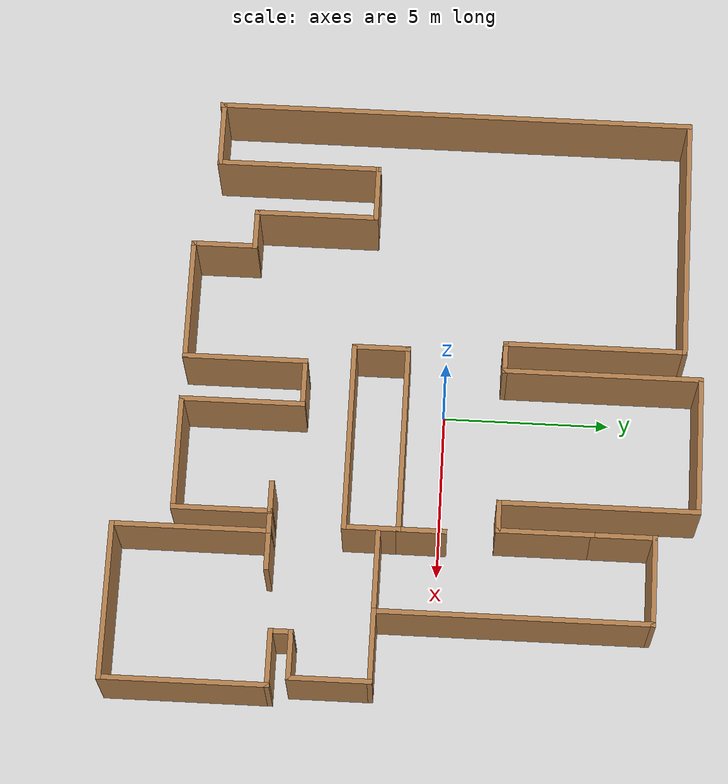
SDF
<?xml version='1.0'?>
<sdf version='1.6'>
  <model name='map_128'>
    <pose frame=''>0.047222 -0.987392 0 0 -0 0</pose>
    <link name='Wall_10'>
      <collision name='Wall_10_Collision'>
        <geometry>
          <box>
            <size>5 0.15 2.5</size>
          </box>
        </geometry>
        <pose frame=''>0 0 1.25 0 -0 0</pose>
      </collision>
      <visual name='Wall_10_Visual'>
        <pose frame=''>0 0 1.25 0 -0 0</pose>
        <geometry>
          <box>
            <size>5 0.15 2.5</size>
          </box>
        </geometry>
        <material>
          <script>
            <uri>file://media/materials/scripts/gazebo.material</uri>
            <name>Gazebo/Wood</name>
          </script>
          <ambient>1 1 1 1</ambient>
        </material>
        <meta>
          <layer>0</layer>
        </meta>
      </visual>
      <pose frame=''>-7.15 -3.8 0 0 -0 1.5708</pose>
    </link>
    <link name='Wall_11'>
      <collision name='Wall_11_Collision'>
        <geometry>
          <box>
            <size>1.75 0.15 2.5</size>
          </box>
        </geometry>
        <pose frame=''>0 0 1.25 0 -0 0</pose>
      </collision>
      <visual name='Wall_11_Visual'>
        <pose frame=''>0 0 1.25 0 -0 0</pose>
        <geometry>
          <box>
            <size>1.75 0.15 2.5</size>
          </box>
        </geometry>
        <material>
          <script>
            <uri>file://media/materials/scripts/gazebo.material</uri>
            <name>Gazebo/Wood</name>
          </script>
          <ambient>1 1 1 1</ambient>
        </material>
        <meta>
          <layer>0</layer>
        </meta>
      </visual>
      <pose frame=''>-6.35 -1.375 0 0 -0 0</pose>
    </link>
    <link name='Wall_12'>
      <collision name='Wall_12_Collision'>
        <geometry>
          <box>
            <size>3.75 0.15 2.5</size>
          </box>
        </geometry>
        <pose frame=''>0 0 1.25 0 -0 0</pose>
      </collision>
      <visual name='Wall_12_Visual'>
        <pose frame=''>0 0 1.25 0 -0 0</pose>
        <geometry>
          <box>
            <size>3.75 0.15 2.5</size>
          </box>
        </geometry>
        <material>
          <script>
            <uri>file://media/materials/scripts/gazebo.material</uri>
            <name>Gazebo/Wood</name>
          </script>
          <ambient>1 1 1 1</ambient>
        </material>
        <meta>
          <layer>0</layer>
        </meta>
      </visual>
      <pose frame=''>-5.55 -3.175 0 0 -0 -1.5708</pose>
    </link>
    <link name='Wall_13'>
      <collision name='Wall_13_Collision'>
        <geometry>
          <box>
            <size>1.25 0.15 2.5</size>
          </box>
        </geometry>
        <pose frame=''>0 0 1.25 0 -0 0</pose>
      </collision>
      <visual name='Wall_13_Visual'>
        <pose frame=''>0 0 1.25 0 -0 0</pose>
        <geometry>
          <box>
            <size>1.25 0.15 2.5</size>
          </box>
        </geometry>
        <material>
          <script>
            <uri>file://media/materials/scripts/gazebo.material</uri>
            <name>Gazebo/Wood</name>
          </script>
          <ambient>1 1 1 1</ambient>
        </material>
        <meta>
          <layer>0</layer>
        </meta>
      </visual>
      <pose frame=''>-5 -4.975 0 0 -0 0</pose>
    </link>
    <link name='Wall_14'>
      <collision name='Wall_14_Collision'>
        <geometry>
          <box>
            <size>2 0.15 2.5</size>
          </box>
        </geometry>
        <pose frame=''>0 0 1.25 0 -0 0</pose>
      </collision>
      <visual name='Wall_14_Visual'>
        <pose frame=''>0 0 1.25 0 -0 0</pose>
        <geometry>
          <box>
            <size>2 0.15 2.5</size>
          </box>
        </geometry>
        <material>
          <script>
            <uri>file://media/materials/scripts/gazebo.material</uri>
            <name>Gazebo/Wood</name>
          </script>
          <ambient>1 1 1 1</ambient>
        </material>
        <meta>
          <layer>0</layer>
        </meta>
      </visual>
      <pose frame=''>-4.45 -5.9 0 0 -0 -1.5708</pose>
    </link>
    <link name='Wall_15'>
      <collision name='Wall_15_Collision'>
        <geometry>
          <box>
            <size>3.75 0.15 2.5</size>
          </box>
        </geometry>
        <pose frame=''>0 0 1.25 0 -0 0</pose>
      </collision>
      <visual name='Wall_15_Visual'>
        <pose frame=''>0 0 1.25 0 -0 0</pose>
        <geometry>
          <box>
            <size>3.75 0.15 2.5</size>
          </box>
        </geometry>
        <material>
          <script>
            <uri>file://media/materials/scripts/gazebo.material</uri>
            <name>Gazebo/Wood</name>
          </script>
          <ambient>1 1 1 1</ambient>
        </material>
        <meta>
          <layer>0</layer>
        </meta>
      </visual>
      <pose frame=''>-2.65 -6.825 0 0 -0 0</pose>
    </link>
    <link name='Wall_16'>
      <collision name='Wall_16_Collision'>
        <geometry>
          <box>
            <size>3.75 0.15 2.5</size>
          </box>
        </geometry>
        <pose frame=''>0 0 1.25 0 -0 0</pose>
      </collision>
      <visual name='Wall_16_Visual'>
        <pose frame=''>0 0 1.25 0 -0 0</pose>
        <geometry>
          <box>
            <size>3.75 0.15 2.5</size>
          </box>
        </geometry>
        <material>
          <script>
            <uri>file://media/materials/scripts/gazebo.material</uri>
            <name>Gazebo/Wood</name>
          </script>
          <ambient>1 1 1 1</ambient>
        </material>
        <meta>
          <layer>0</layer>
        </meta>
      </visual>
      <pose frame=''>-0.85 -5.025 0 0 -0 1.5708</pose>
    </link>
    <link name='Wall_17'>
      <collision name='Wall_17_Collision'>
        <geometry>
          <box>
            <size>1.5 0.15 2.5</size>
          </box>
        </geometry>
        <pose frame=''>0 0 1.25 0 -0 0</pose>
      </collision>
      <visual name='Wall_17_Visual'>
        <pose frame=''>0 0 1.25 0 -0 0</pose>
        <geometry>
          <box>
            <size>1.5 0.15 2.5</size>
          </box>
        </geometry>
        <material>
          <script>
            <uri>file://media/materials/scripts/gazebo.material</uri>
            <name>Gazebo/Wood</name>
          </script>
          <ambient>1 1 1 1</ambient>
        </material>
        <meta>
          <layer>0</layer>
        </meta>
      </visual>
      <pose frame=''>-0.175 -3.225 0 0 -0 0</pose>
    </link>
    <link name='Wall_18'>
      <collision name='Wall_18_Collision'>
        <geometry>
          <box>
            <size>3.75 0.15 2.5</size>
          </box>
        </geometry>
        <pose frame=''>0 0 1.25 0 -0 0</pose>
      </collision>
      <visual name='Wall_18_Visual'>
        <pose frame=''>0 0 1.25 0 -0 0</pose>
        <geometry>
          <box>
            <size>3.75 0.15 2.5</size>
          </box>
        </geometry>
        <material>
          <script>
            <uri>file://media/materials/scripts/gazebo.material</uri>
            <name>Gazebo/Wood</name>
          </script>
          <ambient>1 1 1 1</ambient>
        </material>
        <meta>
          <layer>0</layer>
        </meta>
      </visual>
      <pose frame=''>0.5 -5.025 0 0 -0 -1.5708</pose>
    </link>
    <link name='Wall_19'>
      <collision name='Wall_19_Collision'>
        <geometry>
          <box>
            <size>3.5 0.15 2.5</size>
          </box>
        </geometry>
        <pose frame=''>0 0 1.25 0 -0 0</pose>
      </collision>
      <visual name='Wall_19_Visual'>
        <pose frame=''>0 0 1.25 0 -0 0</pose>
        <geometry>
          <box>
            <size>3.5 0.15 2.5</size>
          </box>
        </geometry>
        <material>
          <script>
            <uri>file://media/materials/scripts/gazebo.material</uri>
            <name>Gazebo/Wood</name>
          </script>
          <ambient>1 1 1 1</ambient>
        </material>
        <meta>
          <layer>0</layer>
        </meta>
      </visual>
      <pose frame=''>2.175 -6.825 0 0 -0 0</pose>
    </link>
    <link name='Wall_20'>
      <collision name='Wall_20_Collision'>
        <geometry>
          <box>
            <size>3 0.15 2.5</size>
          </box>
        </geometry>
        <pose frame=''>0 0 1.25 0 -0 0</pose>
      </collision>
      <visual name='Wall_20_Visual'>
        <pose frame=''>0 0 1.25 0 -0 0</pose>
        <geometry>
          <box>
            <size>3 0.15 2.5</size>
          </box>
        </geometry>
        <material>
          <script>
            <uri>file://media/materials/scripts/gazebo.material</uri>
            <name>Gazebo/Wood</name>
          </script>
          <ambient>1 1 1 1</ambient>
        </material>
        <meta>
          <layer>0</layer>
        </meta>
      </visual>
      <pose frame=''>3.85 -5.4 0 0 -0 1.5708</pose>
    </link>
    <link name='Wall_21'>
      <collision name='Wall_21_Collision'>
        <geometry>
          <box>
            <size>0.75 0.15 2.5</size>
          </box>
        </geometry>
        <pose frame=''>0 0 1.25 0 -0 0</pose>
      </collision>
      <visual name='Wall_21_Visual'>
        <pose frame=''>0 0 1.25 0 -0 0</pose>
        <geometry>
          <box>
            <size>0.75 0.15 2.5</size>
          </box>
        </geometry>
        <material>
          <script>
            <uri>file://media/materials/scripts/gazebo.material</uri>
            <name>Gazebo/Wood</name>
          </script>
          <ambient>1 1 1 1</ambient>
        </material>
        <meta>
          <layer>0</layer>
        </meta>
      </visual>
      <pose frame=''>4.15 -3.975 0 0 -0 0</pose>
    </link>
    <link name='Wall_22'>
      <collision name='Wall_22_Collision'>
        <geometry>
          <box>
            <size>4.75 0.15 2.5</size>
          </box>
        </geometry>
        <pose frame=''>0 0 1.25 0 -0 0</pose>
      </collision>
      <visual name='Wall_22_Visual'>
        <pose frame=''>0 0 1.25 0 -0 0</pose>
        <geometry>
          <box>
            <size>4.75 0.15 2.5</size>
          </box>
        </geometry>
        <material>
          <script>
            <uri>file://media/materials/scripts/gazebo.material</uri>
            <name>Gazebo/Wood</name>
          </script>
          <ambient>1 1 1 1</ambient>
        </material>
        <meta>
          <layer>0</layer>
        </meta>
      </visual>
      <pose frame=''>4.45 -6.275 0 0 -0 -1.5708</pose>
    </link>
    <link name='Wall_23'>
      <collision name='Wall_23_Collision'>
        <geometry>
          <box>
            <size>4.75 0.15 2.5</size>
          </box>
        </geometry>
        <pose frame=''>0 0 1.25 0 -0 0</pose>
      </collision>
      <visual name='Wall_23_Visual'>
        <pose frame=''>0 0 1.25 0 -0 0</pose>
        <geometry>
          <box>
            <size>4.75 0.15 2.5</size>
          </box>
        </geometry>
        <material>
          <script>
            <uri>file://media/materials/scripts/gazebo.material</uri>
            <name>Gazebo/Wood</name>
          </script>
          <ambient>1 1 1 1</ambient>
        </material>
        <meta>
          <layer>0</layer>
        </meta>
      </visual>
      <pose frame=''>6.75 -8.575 0 0 -0 0</pose>
    </link>
    <link name='Wall_24'>
      <collision name='Wall_24_Collision'>
        <geometry>
          <box>
            <size>5 0.15 2.5</size>
          </box>
        </geometry>
        <pose frame=''>0 0 1.25 0 -0 0</pose>
      </collision>
      <visual name='Wall_24_Visual'>
        <pose frame=''>0 0 1.25 0 -0 0</pose>
        <geometry>
          <box>
            <size>5 0.15 2.5</size>
          </box>
        </geometry>
        <material>
          <script>
            <uri>file://media/materials/scripts/gazebo.material</uri>
            <name>Gazebo/Wood</name>
          </script>
          <ambient>1 1 1 1</ambient>
        </material>
        <meta>
          <layer>0</layer>
        </meta>
      </visual>
      <pose frame=''>9.05 -6.15 0 0 -0 1.5708</pose>
    </link>
    <link name='Wall_25'>
      <collision name='Wall_25_Collision'>
        <geometry>
          <box>
            <size>1.75 0.15 2.5</size>
          </box>
        </geometry>
        <pose frame=''>0 0 1.25 0 -0 0</pose>
      </collision>
      <visual name='Wall_25_Visual'>
        <pose frame=''>0 0 1.25 0 -0 0</pose>
        <geometry>
          <box>
            <size>1.75 0.15 2.5</size>
          </box>
        </geometry>
        <material>
          <script>
            <uri>file://media/materials/scripts/gazebo.material</uri>
            <name>Gazebo/Wood</name>
          </script>
          <ambient>1 1 1 1</ambient>
        </material>
        <meta>
          <layer>0</layer>
        </meta>
      </visual>
      <pose frame=''>8.25 -3.725 0 0 -0 3.14159</pose>
    </link>
    <link name='Wall_26'>
      <collision name='Wall_26_Collision'>
        <geometry>
          <box>
            <size>0.75 0.15 2.5</size>
          </box>
        </geometry>
        <pose frame=''>0 0 1.25 0 -0 0</pose>
      </collision>
      <visual name='Wall_26_Visual'>
        <pose frame=''>0 0 1.25 0 -0 0</pose>
        <geometry>
          <box>
            <size>0.75 0.15 2.5</size>
          </box>
        </geometry>
        <material>
          <script>
            <uri>file://media/materials/scripts/gazebo.material</uri>
            <name>Gazebo/Wood</name>
          </script>
          <ambient>1 1 1 1</ambient>
        </material>
        <meta>
          <layer>0</layer>
        </meta>
      </visual>
      <pose frame=''>7.45 -3.425 0 0 -0 1.5708</pose>
    </link>
    <link name='Wall_27'>
      <collision name='Wall_27_Collision'>
        <geometry>
          <box>
            <size>1.5 0.15 2.5</size>
          </box>
        </geometry>
        <pose frame=''>0 0 1.25 0 -0 0</pose>
      </collision>
      <visual name='Wall_27_Visual'>
        <pose frame=''>0 0 1.25 0 -0 0</pose>
        <geometry>
          <box>
            <size>1.5 0.15 2.5</size>
          </box>
        </geometry>
        <material>
          <script>
            <uri>file://media/materials/scripts/gazebo.material</uri>
            <name>Gazebo/Wood</name>
          </script>
          <ambient>1 1 1 1</ambient>
        </material>
        <meta>
          <layer>0</layer>
        </meta>
      </visual>
      <pose frame=''>8.125 -3.125 0 0 -0 0</pose>
    </link>
    <link name='Wall_28'>
      <collision name='Wall_28_Collision'>
        <geometry>
          <box>
            <size>2.5 0.15 2.5</size>
          </box>
        </geometry>
        <pose frame=''>0 0 1.25 0 -0 0</pose>
      </collision>
      <visual name='Wall_28_Visual'>
        <pose frame=''>0 0 1.25 0 -0 0</pose>
        <geometry>
          <box>
            <size>2.5 0.15 2.5</size>
          </box>
        </geometry>
        <material>
          <script>
            <uri>file://media/materials/scripts/gazebo.material</uri>
            <name>Gazebo/Wood</name>
          </script>
          <ambient>1 1 1 1</ambient>
        </material>
        <meta>
          <layer>0</layer>
        </meta>
      </visual>
      <pose frame=''>8.8 -1.95 0 0 -0 1.5708</pose>
    </link>
    <link name='Wall_29'>
      <collision name='Wall_29_Collision'>
        <geometry>
          <box>
            <size>2.25 0.15 2.5</size>
          </box>
        </geometry>
        <pose frame=''>0 0 1.25 0 -0 0</pose>
      </collision>
      <visual name='Wall_29_Visual'>
        <pose frame=''>0 0 1.25 0 -0 0</pose>
        <geometry>
          <box>
            <size>2.25 0.15 2.5</size>
          </box>
        </geometry>
        <material>
          <script>
            <uri>file://media/materials/scripts/gazebo.material</uri>
            <name>Gazebo/Wood</name>
          </script>
          <ambient>1 1 1 1</ambient>
        </material>
        <meta>
          <layer>0</layer>
        </meta>
      </visual>
      <pose frame=''>7.75 -0.775 0 0 -0 3.14159</pose>
    </link>
    <link name='Wall_30'>
      <collision name='Wall_30_Collision'>
        <geometry>
          <box>
            <size>8.25 0.15 2.5</size>
          </box>
        </geometry>
        <pose frame=''>0 0 1.25 0 -0 0</pose>
      </collision>
      <visual name='Wall_30_Visual'>
        <pose frame=''>0 0 1.25 0 -0 0</pose>
        <geometry>
          <box>
            <size>8.25 0.15 2.5</size>
          </box>
        </geometry>
        <material>
          <script>
            <uri>file://media/materials/scripts/gazebo.material</uri>
            <name>Gazebo/Wood</name>
          </script>
          <ambient>1 1 1 1</ambient>
        </material>
        <meta>
          <layer>0</layer>
        </meta>
      </visual>
      <pose frame=''>6.7 3.275 0 0 -0 1.5708</pose>
    </link>
    <link name='Wall_31'>
      <collision name='Wall_31_Collision'>
        <geometry>
          <box>
            <size>2.75 0.15 2.5</size>
          </box>
        </geometry>
        <pose frame=''>0 0 1.25 0 -0 0</pose>
      </collision>
      <visual name='Wall_31_Visual'>
        <pose frame=''>0 0 1.25 0 -0 0</pose>
        <geometry>
          <box>
            <size>2.75 0.15 2.5</size>
          </box>
        </geometry>
        <material>
          <script>
            <uri>file://media/materials/scripts/gazebo.material</uri>
            <name>Gazebo/Wood</name>
          </script>
          <ambient>1 1 1 1</ambient>
        </material>
        <meta>
          <layer>0</layer>
        </meta>
      </visual>
      <pose frame=''>5.4 7.325 0 0 -0 3.14159</pose>
    </link>
    <link name='Wall_32'>
      <collision name='Wall_32_Collision'>
        <geometry>
          <box>
            <size>2 0.15 2.5</size>
          </box>
        </geometry>
        <pose frame=''>0 0 1.25 0 -0 0</pose>
      </collision>
      <visual name='Wall_32_Visual'>
        <pose frame=''>0 0 1.25 0 -0 0</pose>
        <geometry>
          <box>
            <size>2 0.15 2.5</size>
          </box>
        </geometry>
        <material>
          <script>
            <uri>file://media/materials/scripts/gazebo.material</uri>
            <name>Gazebo/Wood</name>
          </script>
          <ambient>1 1 1 1</ambient>
        </material>
        <meta>
          <layer>0</layer>
        </meta>
      </visual>
      <pose frame=''>4.1 6.4 0 0 -0 -1.5708</pose>
    </link>
    <link name='Wall_35'>
      <collision name='Wall_35_Collision'>
        <geometry>
          <box>
            <size>4.25 0.15 2.5</size>
          </box>
        </geometry>
        <pose frame=''>0 0 1.25 0 -0 0</pose>
      </collision>
      <visual name='Wall_35_Visual'>
        <pose frame=''>0 0 1.25 0 -0 0</pose>
        <geometry>
          <box>
            <size>4.25 0.15 2.5</size>
          </box>
        </geometry>
        <material>
          <script>
            <uri>file://media/materials/scripts/gazebo.material</uri>
            <name>Gazebo/Wood</name>
          </script>
          <ambient>1 1 1 1</ambient>
        </material>
        <meta>
          <layer>0</layer>
        </meta>
      </visual>
      <pose frame=''>1.2 8.575 0 0 -0 3.14159</pose>
    </link>
    <link name='Wall_36'>
      <collision name='Wall_36_Collision'>
        <geometry>
          <box>
            <size>6 0.15 2.5</size>
          </box>
        </geometry>
        <pose frame=''>0 0 1.25 0 -0 0</pose>
      </collision>
      <visual name='Wall_36_Visual'>
        <pose frame=''>0 0 1.25 0 -0 0</pose>
        <geometry>
          <box>
            <size>6 0.15 2.5</size>
          </box>
        </geometry>
        <material>
          <script>
            <uri>file://media/materials/scripts/gazebo.material</uri>
            <name>Gazebo/Wood</name>
          </script>
          <ambient>1 1 1 1</ambient>
        </material>
        <meta>
          <layer>0</layer>
        </meta>
      </visual>
      <pose frame=''>-0.85 5.65 0 0 -0 -1.5708</pose>
    </link>
    <link name='Wall_37'>
      <collision name='Wall_37_Collision'>
        <geometry>
          <box>
            <size>1 0.15 2.5</size>
          </box>
        </geometry>
        <pose frame=''>0 0 1.25 0 -0 0</pose>
      </collision>
      <visual name='Wall_37_Visual'>
        <pose frame=''>0 0 1.25 0 -0 0</pose>
        <geometry>
          <box>
            <size>1 0.15 2.5</size>
          </box>
        </geometry>
        <material>
          <script>
            <uri>file://media/materials/scripts/gazebo.material</uri>
            <name>Gazebo/Wood</name>
          </script>
          <ambient>1 1 1 1</ambient>
        </material>
        <meta>
          <layer>0</layer>
        </meta>
      </visual>
      <pose frame=''>-1.275 2.725 0 0 -0 3.14159</pose>
    </link>
    <link name='Wall_38'>
      <collision name='Wall_38_Collision'>
        <geometry>
          <box>
            <size>5.5 0.15 2.5</size>
          </box>
        </geometry>
        <pose frame=''>0 0 1.25 0 -0 0</pose>
      </collision>
      <visual name='Wall_38_Visual'>
        <pose frame=''>0 0 1.25 0 -0 0</pose>
        <geometry>
          <box>
            <size>5.5 0.15 2.5</size>
          </box>
        </geometry>
        <material>
          <script>
            <uri>file://media/materials/scripts/gazebo.material</uri>
            <name>Gazebo/Wood</name>
          </script>
          <ambient>1 1 1 1</ambient>
        </material>
        <meta>
          <layer>0</layer>
        </meta>
      </visual>
      <pose frame=''>-1.7 5.4 0 0 -0 1.5708</pose>
    </link>
    <link name='Wall_39'>
      <collision name='Wall_39_Collision'>
        <geometry>
          <box>
            <size>7.5 0.15 2.5</size>
          </box>
        </geometry>
        <pose frame=''>0 0 1.25 0 -0 0</pose>
      </collision>
      <visual name='Wall_39_Visual'>
        <pose frame=''>0 0 1.25 0 -0 0</pose>
        <geometry>
          <box>
            <size>7.5 0.15 2.5</size>
          </box>
        </geometry>
        <material>
          <script>
            <uri>file://media/materials/scripts/gazebo.material</uri>
            <name>Gazebo/Wood</name>
          </script>
          <ambient>1 1 1 1</ambient>
        </material>
        <meta>
          <layer>0</layer>
        </meta>
      </visual>
      <pose frame=''>-5.375 8.075 0 0 -0 3.14159</pose>
    </link>
    <link name='Wall_41'>
      <collision name='Wall_41_Collision'>
        <geometry>
          <box>
            <size>14.5 0.15 2.5</size>
          </box>
        </geometry>
        <pose frame=''>0 0 1.25 0 -0 0</pose>
      </collision>
      <visual name='Wall_41_Visual'>
        <pose frame=''>0 0 1.25 0 -0 0</pose>
        <geometry>
          <box>
            <size>14.5 0.15 2.5</size>
          </box>
        </geometry>
        <material>
          <script>
            <uri>file://media/materials/scripts/gazebo.material</uri>
            <name>Gazebo/Wood</name>
          </script>
          <ambient>1 1 1 1</ambient>
        </material>
        <meta>
          <layer>0</layer>
        </meta>
      </visual>
      <pose frame=''>-9.05 0.9 0 0 -0 -1.5708</pose>
    </link>
    <link name='Wall_43'>
      <collision name='Wall_43_Collision'>
        <geometry>
          <box>
            <size>5.75 0.15 2.5</size>
          </box>
        </geometry>
        <pose frame=''>0 0 1.25 0 -0 0</pose>
      </collision>
      <visual name='Wall_43_Visual'>
        <pose frame=''>0 0 1.25 0 -0 0</pose>
        <geometry>
          <box>
            <size>5.75 0.15 2.5</size>
          </box>
        </geometry>
        <material>
          <script>
            <uri>file://media/materials/scripts/gazebo.material</uri>
            <name>Gazebo/Wood</name>
          </script>
          <ambient>1 1 1 1</ambient>
        </material>
        <meta>
          <layer>0</layer>
        </meta>
      </visual>
      <pose frame=''>1.41512 -0.186365 0 0 -0 3.14159</pose>
    </link>
    <link name='Wall_44'>
      <collision name='Wall_44_Collision'>
        <geometry>
          <box>
            <size>1.75 0.15 2.5</size>
          </box>
        </geometry>
        <pose frame=''>0 0 1.25 0 -0 0</pose>
      </collision>
      <visual name='Wall_44_Visual'>
        <pose frame=''>0 0 1.25 0 -0 0</pose>
        <geometry>
          <box>
            <size>1.75 0.15 2.5</size>
          </box>
        </geometry>
        <material>
          <script>
            <uri>file://media/materials/scripts/gazebo.material</uri>
            <name>Gazebo/Wood</name>
          </script>
          <ambient>1 1 1 1</ambient>
        </material>
        <meta>
          <layer>0</layer>
        </meta>
      </visual>
      <pose frame=''>-1.38488 -0.986365 0 0 -0 -1.5708</pose>
    </link>
    <link name='Wall_45'>
      <collision name='Wall_45_Collision'>
        <geometry>
          <box>
            <size>5.75 0.15 2.5</size>
          </box>
        </geometry>
        <pose frame=''>0 0 1.25 0 -0 0</pose>
      </collision>
      <visual name='Wall_45_Visual'>
        <pose frame=''>0 0 1.25 0 -0 0</pose>
        <geometry>
          <box>
            <size>5.75 0.15 2.5</size>
          </box>
        </geometry>
        <material>
          <script>
            <uri>file://media/materials/scripts/gazebo.material</uri>
            <name>Gazebo/Wood</name>
          </script>
          <ambient>1 1 1 1</ambient>
        </material>
        <meta>
          <layer>0</layer>
        </meta>
      </visual>
      <pose frame=''>1.41512 -1.78636 0 0 -0 0</pose>
    </link>
    <link name='Wall_46'>
      <collision name='Wall_46_Collision'>
        <geometry>
          <box>
            <size>1.75 0.15 2.5</size>
          </box>
        </geometry>
        <pose frame=''>0 0 1.25 0 -0 0</pose>
      </collision>
      <visual name='Wall_46_Visual'>
        <pose frame=''>0 0 1.25 0 -0 0</pose>
        <geometry>
          <box>
            <size>1.75 0.15 2.5</size>
          </box>
        </geometry>
        <material>
          <script>
            <uri>file://media/materials/scripts/gazebo.material</uri>
            <name>Gazebo/Wood</name>
          </script>
          <ambient>1 1 1 1</ambient>
        </material>
        <meta>
          <layer>0</layer>
        </meta>
      </visual>
      <pose frame=''>4.21512 -0.986365 0 0 -0 1.5708</pose>
    </link>
    <link name='Wall_48'>
      <collision name='Wall_48_Collision'>
        <geometry>
          <box>
            <size>6 0.15 2.5</size>
          </box>
        </geometry>
        <pose frame=''>0 0 1.25 0 -0 0</pose>
      </collision>
      <visual name='Wall_48_Visual'>
        <pose frame=''>0 0 1.25 0 -0 0</pose>
        <geometry>
          <box>
            <size>6 0.15 2.5</size>
          </box>
        </geometry>
        <material>
          <script>
            <uri>file://media/materials/scripts/gazebo.material</uri>
            <name>Gazebo/Wood</name>
          </script>
          <ambient>1 1 1 1</ambient>
        </material>
        <meta>
          <layer>0</layer>
        </meta>
      </visual>
      <pose frame=''>3.25 5.65 0 0 -0 -1.5708</pose>
    </link>
    <link name='Wall_51'>
      <collision name='Wall_51_Collision'>
        <geometry>
          <box>
            <size>1 0.15 2.5</size>
          </box>
        </geometry>
        <pose frame=''>0 0 1.25 0 -0 0</pose>
      </collision>
      <visual name='Wall_51_Visual'>
        <pose frame=''>0 0 1.25 0 -0 0</pose>
        <geometry>
          <box>
            <size>1 0.15 2.5</size>
          </box>
        </geometry>
        <material>
          <script>
            <uri>file://media/materials/scripts/gazebo.material</uri>
            <name>Gazebo/Wood</name>
          </script>
          <ambient>1 1 1 1</ambient>
        </material>
        <meta>
          <layer>0</layer>
        </meta>
      </visual>
      <pose frame=''>3.675 2.725 0 0 -0 0</pose>
    </link>
    <link name='Wall_52'>
      <collision name='Wall_52_Collision'>
        <geometry>
          <box>
            <size>2.9 0.15 2.5</size>
          </box>
        </geometry>
        <pose frame=''>0 0 1.25 0 -0 0</pose>
      </collision>
      <visual name='Wall_52_Visual'>
        <pose frame=''>0 0 1.25 0 -0 0</pose>
        <geometry>
          <box>
            <size>2.9 0.15 2.5</size>
          </box>
        </geometry>
        <material>
          <script>
            <uri>file://media/materials/scripts/gazebo.material</uri>
            <name>Gazebo/Wood</name>
          </script>
          <ambient>1 1 1 1</ambient>
        </material>
        <meta>
          <layer>0</layer>
        </meta>
      </visual>
      <pose frame=''>4.1 4.1 0 0 -0 1.5708</pose>
    </link>
    <link name='Wall_54'>
      <collision name='Wall_54_Collision'>
        <geometry>
          <box>
            <size>1.5 0.15 2.5</size>
          </box>
        </geometry>
        <pose frame=''>0 0 1.25 0 -0 0</pose>
      </collision>
      <visual name='Wall_54_Visual'>
        <pose frame=''>0 0 1.25 0 -0 0</pose>
        <geometry>
          <box>
            <size>1.5 0.15 2.5</size>
          </box>
        </geometry>
        <material>
          <script>
            <uri>file://media/materials/scripts/gazebo.material</uri>
            <name>Gazebo/Wood</name>
          </script>
          <ambient>1 1 1 1</ambient>
        </material>
        <meta>
          <layer>0</layer>
        </meta>
      </visual>
      <pose frame=''>4.21512 0.488635 0 0 -0 1.5708</pose>
    </link>
    <link name='Wall_56'>
      <collision name='Wall_56_Collision'>
        <geometry>
          <box>
            <size>2.5 0.15 2.5</size>
          </box>
        </geometry>
        <pose frame=''>0 0 1.25 0 -0 0</pose>
      </collision>
      <visual name='Wall_56_Visual'>
        <pose frame=''>0 0 1.25 0 -0 0</pose>
        <geometry>
          <box>
            <size>2.5 0.15 2.5</size>
          </box>
        </geometry>
        <material>
          <script>
            <uri>file://media/materials/scripts/gazebo.material</uri>
            <name>Gazebo/Wood</name>
          </script>
          <ambient>1 1 1 1</ambient>
        </material>
        <meta>
          <layer>0</layer>
        </meta>
      </visual>
      <pose frame=''>5.525 -0.775 0 0 -0 3.14159</pose>
    </link>
    <link name='Wall_58'>
      <collision name='Wall_58_Collision'>
        <geometry>
          <box>
            <size>1.25 0.15 2.5</size>
          </box>
        </geometry>
        <pose frame=''>0 0 1.25 0 -0 0</pose>
      </collision>
      <visual name='Wall_58_Visual'>
        <pose frame=''>0 0 1.25 0 -0 0</pose>
        <geometry>
          <box>
            <size>1.25 0.15 2.5</size>
          </box>
        </geometry>
        <material>
          <script>
            <uri>file://media/materials/scripts/gazebo.material</uri>
            <name>Gazebo/Wood</name>
          </script>
          <ambient>1 1 1 1</ambient>
        </material>
        <meta>
          <layer>0</layer>
        </meta>
      </visual>
      <pose frame=''>5 -3.975 0 0 -0 0</pose>
    </link>
    <link name='Wall_60'>
      <collision name='Wall_60_Collision'>
        <geometry>
          <box>
            <size>1 0.15 2.5</size>
          </box>
        </geometry>
        <pose frame=''>0 0 1.25 0 -0 0</pose>
      </collision>
      <visual name='Wall_60_Visual'>
        <pose frame=''>0 0 1.25 0 -0 0</pose>
        <geometry>
          <box>
            <size>1 0.15 2.5</size>
          </box>
        </geometry>
        <material>
          <script>
            <uri>file://media/materials/scripts/gazebo.material</uri>
            <name>Gazebo/Wood</name>
          </script>
          <ambient>1 1 1 1</ambient>
        </material>
        <meta>
          <layer>0</layer>
        </meta>
      </visual>
      <pose frame=''>3.425 -3.975 0 0 -0 3.14159</pose>
    </link>
    <link name='Wall_7'>
      <collision name='Wall_7_Collision'>
        <geometry>
          <box>
            <size>2 0.15 2.5</size>
          </box>
        </geometry>
        <pose frame=''>0 0 1.25 0 -0 0</pose>
      </collision>
      <visual name='Wall_7_Visual'>
        <pose frame=''>0 0 1.25 0 -0 0</pose>
        <geometry>
          <box>
            <size>2 0.15 2.5</size>
          </box>
        </geometry>
        <material>
          <script>
            <uri>file://media/materials/scripts/gazebo.material</uri>
            <name>Gazebo/Wood</name>
          </script>
          <ambient>1 1 1 1</ambient>
        </material>
        <meta>
          <layer>0</layer>
        </meta>
      </visual>
      <pose frame=''>-8.075 -6.225 0 0 -0 0</pose>
    </link>
    <static>1</static>
  </model>
</sdf>
